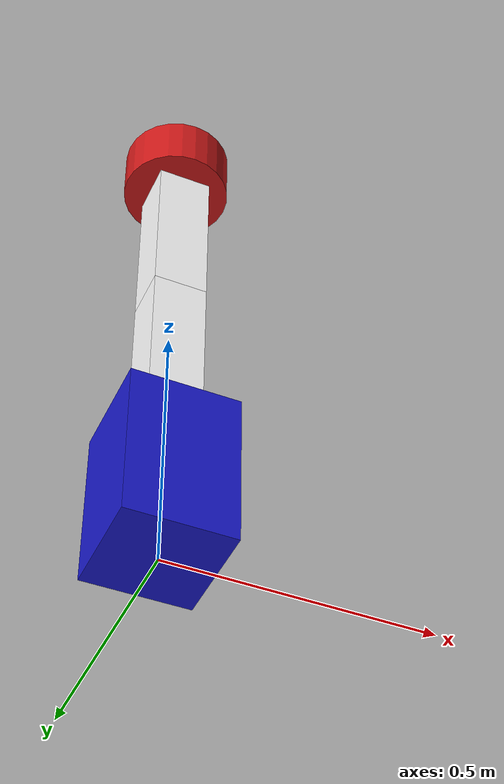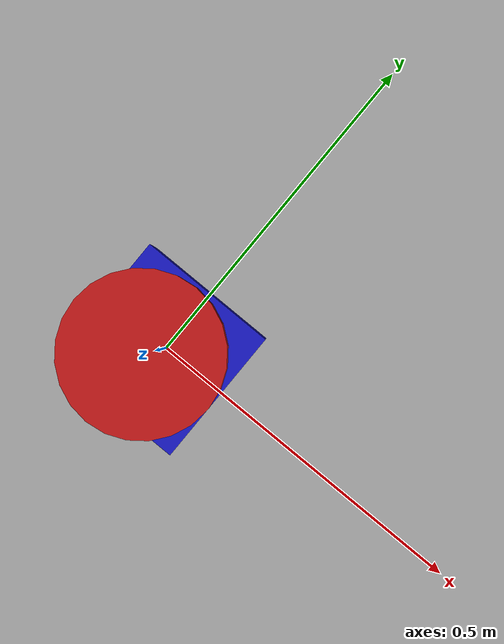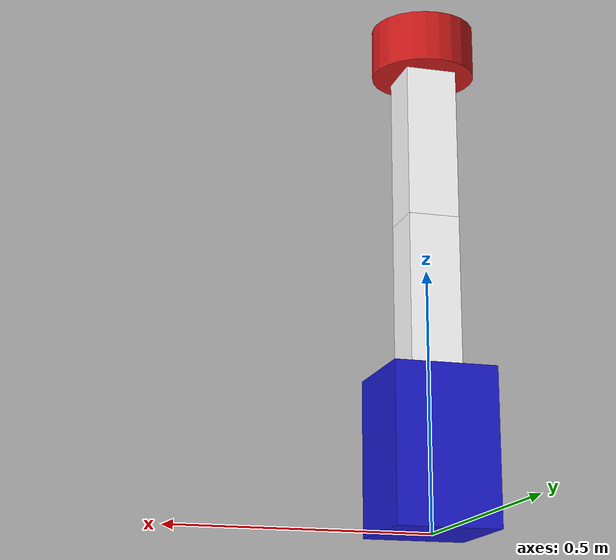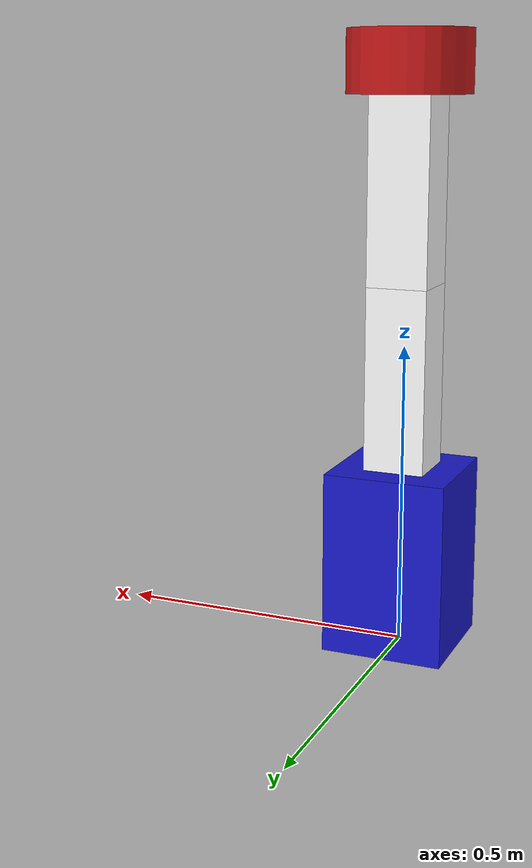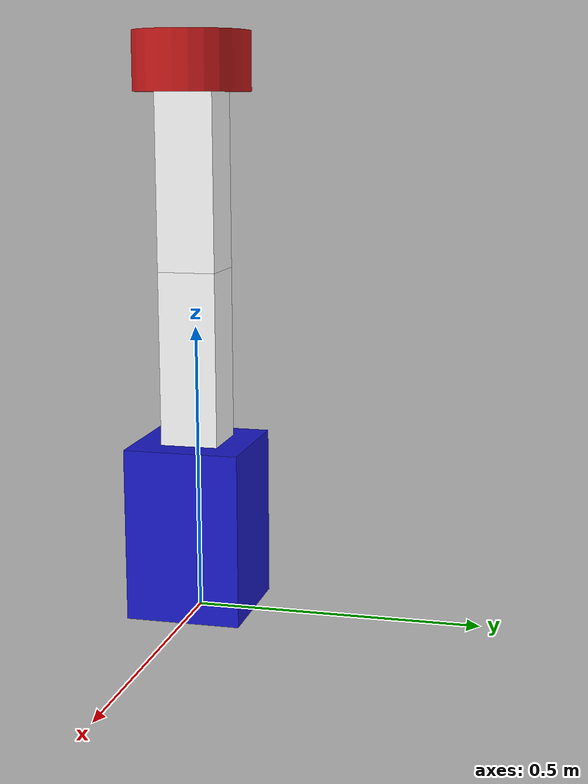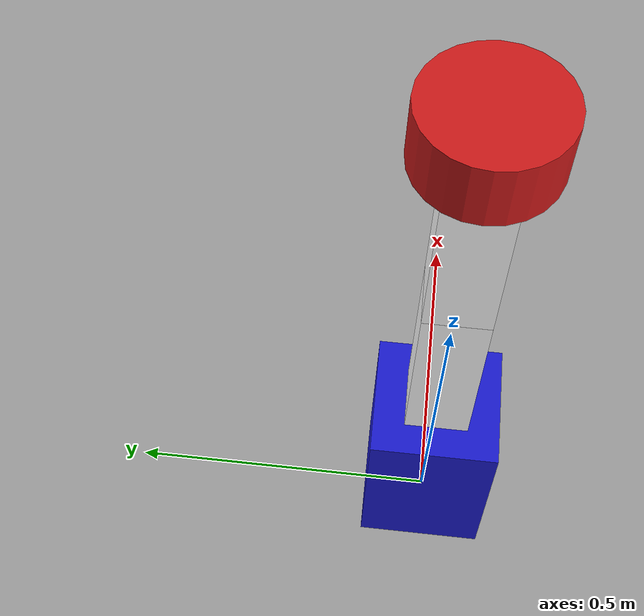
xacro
<?xml version="1.0"?>
<robot xmlns:xacro="http://www.ros.org/wiki/xacro" name="odrive_robot">

    <!-- Include the ros2_control definition -->
    <xacro:include filename="$(find odrive_explorer)/description/ros2_control/multi_dc_ros2_control.xacro"/>

    <!-- Materials -->
    <material name="white">
        <color rgba="1 1 1 1" />
    </material>
    <material name="blue">
        <color rgba="0.1 0.1 0.8 1"/>
    </material>
    <material name="red">
        <color rgba="0.8 0.1 0.1 1"/>
    </material>

    <!-- Base Link -->
    <link name="base_link">
        <visual>
            <origin xyz="0 0 0.15"/>
            <geometry>
                <box size="0.2 0.2 0.3"/>
            </geometry>
            <material name="blue"/>
        </visual>
        <collision>
            <origin xyz="0 0 0.15"/>
            <geometry>
                <box size="0.2 0.2 0.3"/>
            </geometry>
        </collision>
    </link>

    <!-- First Link -->
    <link name="link_1">
        <visual>
            <origin xyz="0 0 0.15"/>
            <geometry>
                <box size="0.1 0.1 0.3"/>
            </geometry>
            <material name="white"/>
        </visual>
        <collision>
            <origin xyz="0 0 0.15"/>
            <geometry>
                <box size="0.1 0.1 0.3"/>
            </geometry>
        </collision>
    </link>

    <!-- Second Link -->
    <link name="link_2">
        <visual>
            <origin xyz="0 0 0.15"/>
            <geometry>
                <box size="0.1 0.1 0.3"/>
            </geometry>
            <material name="white"/>
        </visual>
        <collision>
            <origin xyz="0 0 0.15"/>
            <geometry>
                <box size="0.1 0.1 0.3"/>
            </geometry>
        </collision>
    </link>

    <!-- Third Link -->
    <link name="link_3">
        <visual>
            <origin xyz="0 0 0.05"/>
            <geometry>
                <cylinder length="0.1" radius="0.1"/>
            </geometry>
            <material name="red"/>
        </visual>
        <collision>
            <origin xyz="0 0 0.05"/>
            <geometry>
                <cylinder length="0.1" radius="0.1"/>
            </geometry>
        </collision>
    </link>

    <!-- Joint names must match what's in your controller configuration -->
    <joint name="joint_0" type="revolute">
        <axis xyz="0 0 1"/>
        <limit effort="10.0" lower="-3.14159" upper="3.14159" velocity="1.0"/>
        <origin xyz="0 0 0.3"/>
        <parent link="base_link"/>
        <child link="link_1"/>
    </joint>

    <joint name="joint_1" type="revolute">
        <axis xyz="1 0 0"/>
        <limit effort="10.0" lower="-3.14159" upper="3.14159" velocity="1.0"/>
        <origin xyz="0 0 0.3"/>
        <parent link="link_1"/>
        <child link="link_2"/>
    </joint>

    <joint name="joint_2" type="revolute">
        <axis xyz="1 0 0"/>
        <limit effort="10.0" lower="-3.14159" upper="3.14159" velocity="1.0"/>
        <origin xyz="0 0 0.3"/>
        <parent link="link_2"/>
        <child link="link_3"/>
    </joint>

    <!-- Instantiate the ros2_control macro -->
    <xacro:multi_revolute_ros2_control name="MultiRevoluteSystem" prefix=""/>
</robot>
